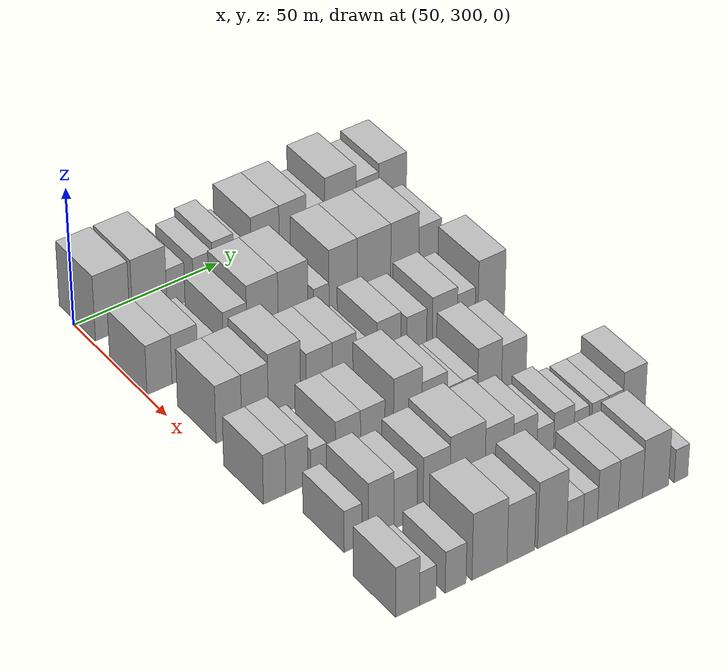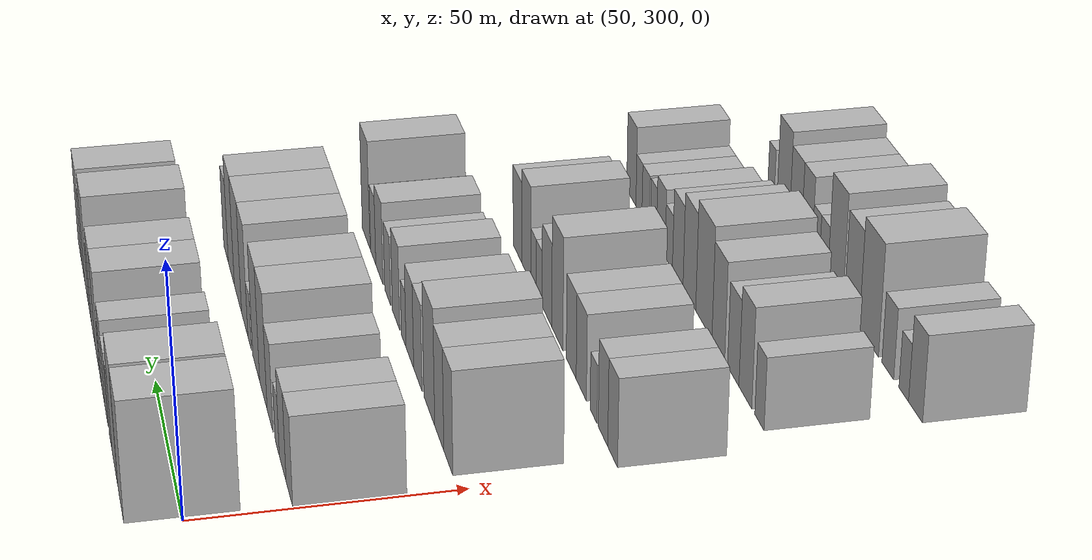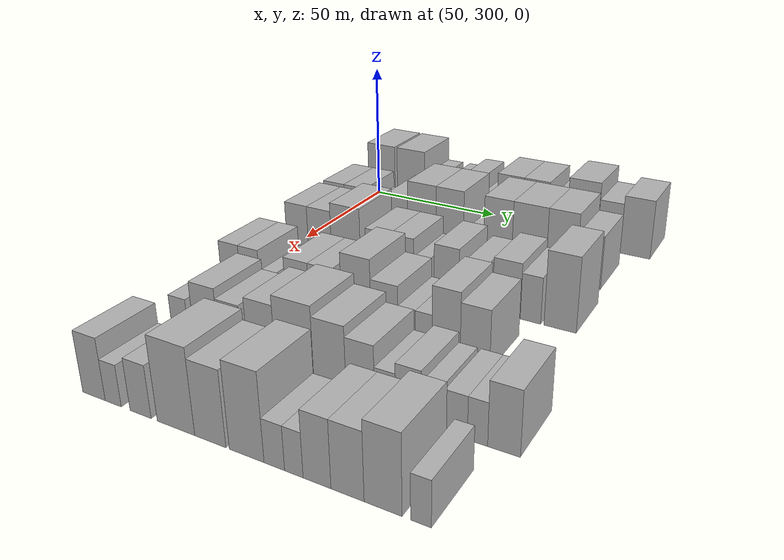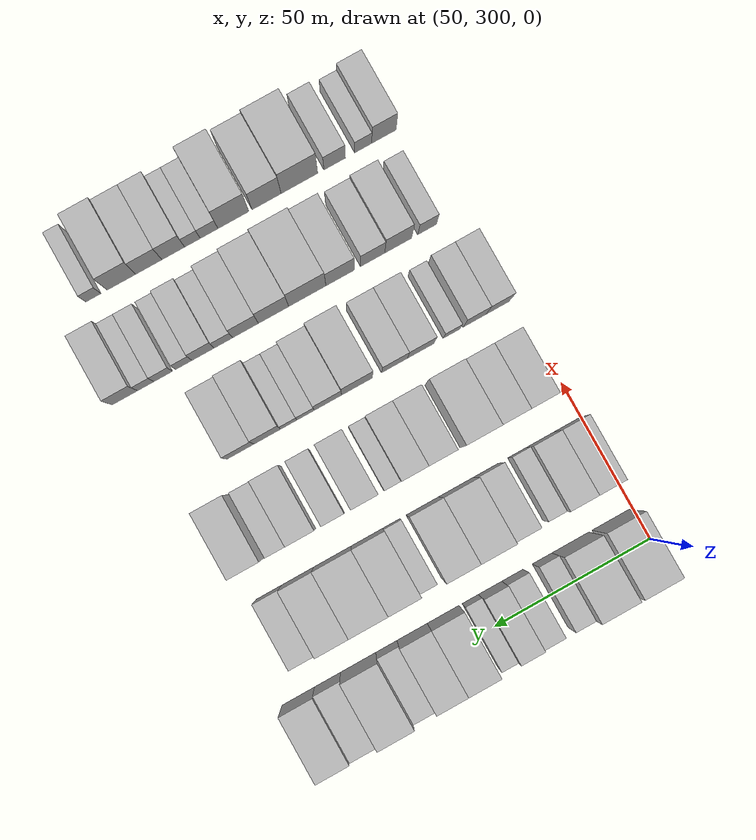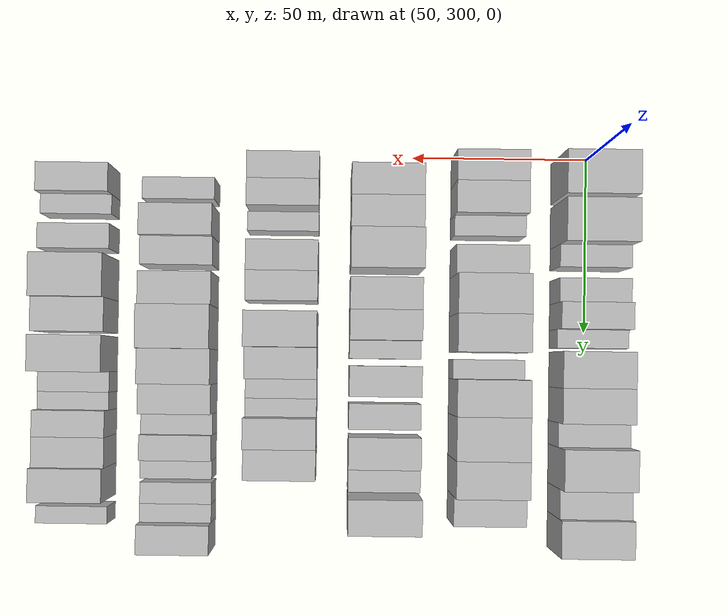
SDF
<sdf version="1.6">
 <world name="default">
  <model name="building_97">
   <static>1</static>
   <pose>50.0000 307.1307 0 0.000000 0.000000 0.000000</pose>
   <link name="link">
    <pose>0 0 12.00 0 0 0</pose>
    <collision name="collision"><geometry><box><size>20.0000 11.8827 24.0000</size></box></geometry></collision>
    <visual name="visual">
     <cast_shadows>0</cast_shadows>
     <geometry><box><size>20.0000 11.8827 24.0000</size></box></geometry>
     <material>
      <script>
       <uri>model://HANNAS_wall/materials/scripts</uri>
       <uri>model://HANNAS_wall/materials/textures</uri>
       <name>vrc/HANNAS_wall</name>
      </script>
     </material>
    </visual>
   </link>
  </model>
  <model name="building_98">
   <static>1</static>
   <pose>50.0000 320.0025 0 0.000000 0.000000 0.000000</pose>
   <link name="link">
    <pose>0 0 12.00 0 0 0</pose>
    <collision name="collision"><geometry><box><size>20.0000 11.8609 24.0000</size></box></geometry></collision>
    <visual name="visual">
     <cast_shadows>0</cast_shadows>
     <geometry><box><size>20.0000 11.8609 24.0000</size></box></geometry>
     <material>
      <script>
       <uri>model://HANNAS_wall/materials/scripts</uri>
       <uri>model://HANNAS_wall/materials/textures</uri>
       <name>vrc/HANNAS_wall</name>
      </script>
     </material>
    </visual>
   </link>
  </model>
  <model name="building_99">
   <static>1</static>
   <pose>50.0000 329.0669 0 0.000000 0.000000 0.000000</pose>
   <link name="link">
    <pose>0 0 7.50 0 0 0</pose>
    <collision name="collision"><geometry><box><size>20.0000 6.2678 15.0000</size></box></geometry></collision>
    <visual name="visual">
     <cast_shadows>0</cast_shadows>
     <geometry><box><size>20.0000 6.2678 15.0000</size></box></geometry>
     <material>
      <script>
       <uri>model://HANNAS_wall/materials/scripts</uri>
       <uri>model://HANNAS_wall/materials/textures</uri>
       <name>vrc/HANNAS_wall</name>
      </script>
     </material>
    </visual>
   </link>
  </model>
  <model name="building_100">
   <static>1</static>
   <pose>50.0000 338.5815 0 0.000000 0.000000 0.000000</pose>
   <link name="link">
    <pose>0 0 7.50 0 0 0</pose>
    <collision name="collision"><geometry><box><size>20.0000 6.7614 15.0000</size></box></geometry></collision>
    <visual name="visual">
     <cast_shadows>0</cast_shadows>
     <geometry><box><size>20.0000 6.7614 15.0000</size></box></geometry>
     <material>
      <script>
       <uri>model://HANNAS_wall/materials/scripts</uri>
       <uri>model://HANNAS_wall/materials/textures</uri>
       <name>vrc/HANNAS_wall</name>
      </script>
     </material>
    </visual>
   </link>
  </model>
  <model name="building_101">
   <static>1</static>
   <pose>50.0000 345.6937 0 0.000000 0.000000 0.000000</pose>
   <link name="link">
    <pose>0 0 9.00 0 0 0</pose>
    <collision name="collision"><geometry><box><size>20.0000 7.4629 18.0000</size></box></geometry></collision>
    <visual name="visual">
     <cast_shadows>0</cast_shadows>
     <geometry><box><size>20.0000 7.4629 18.0000</size></box></geometry>
     <material>
      <script>
       <uri>model://HANNAS_wall/materials/scripts</uri>
       <uri>model://HANNAS_wall/materials/textures</uri>
       <name>vrc/HANNAS_wall</name>
      </script>
     </material>
    </visual>
   </link>
  </model>
  <model name="building_102">
   <static>1</static>
   <pose>50.0000 352.0262 0 0.000000 0.000000 0.000000</pose>
   <link name="link">
    <pose>0 0 6.00 0 0 0</pose>
    <collision name="collision"><geometry><box><size>20.0000 5.2023 12.0000</size></box></geometry></collision>
    <visual name="visual">
     <cast_shadows>0</cast_shadows>
     <geometry><box><size>20.0000 5.2023 12.0000</size></box></geometry>
     <material>
      <script>
       <uri>model://HANNAS_wall/materials/scripts</uri>
       <uri>model://HANNAS_wall/materials/textures</uri>
       <name>vrc/HANNAS_wall</name>
      </script>
     </material>
    </visual>
   </link>
  </model>
  <model name="building_103">
   <static>1</static>
   <pose>50.0000 360.6580 0 0.000000 0.000000 0.000000</pose>
   <link name="link">
    <pose>0 0 10.50 0 0 0</pose>
    <collision name="collision"><geometry><box><size>20.0000 10.0612 21.0000</size></box></geometry></collision>
    <visual name="visual">
     <cast_shadows>0</cast_shadows>
     <geometry><box><size>20.0000 10.0612 21.0000</size></box></geometry>
     <material>
      <script>
       <uri>model://HANNAS_wall/materials/scripts</uri>
       <uri>model://HANNAS_wall/materials/textures</uri>
       <name>vrc/HANNAS_wall</name>
      </script>
     </material>
    </visual>
   </link>
  </model>
  <model name="building_104">
   <static>1</static>
   <pose>50.0000 370.5353 0 0.000000 0.000000 0.000000</pose>
   <link name="link">
    <pose>0 0 10.50 0 0 0</pose>
    <collision name="collision"><geometry><box><size>20.0000 9.6933 21.0000</size></box></geometry></collision>
    <visual name="visual">
     <cast_shadows>0</cast_shadows>
     <geometry><box><size>20.0000 9.6933 21.0000</size></box></geometry>
     <material>
      <script>
       <uri>model://HANNAS_wall/materials/scripts</uri>
       <uri>model://HANNAS_wall/materials/textures</uri>
       <name>vrc/HANNAS_wall</name>
      </script>
     </material>
    </visual>
   </link>
  </model>
  <model name="building_105">
   <static>1</static>
   <pose>50.0000 378.7601 0 0.000000 0.000000 0.000000</pose>
   <link name="link">
    <pose>0 0 7.50 0 0 0</pose>
    <collision name="collision"><geometry><box><size>20.0000 6.7562 15.0000</size></box></geometry></collision>
    <visual name="visual">
     <cast_shadows>0</cast_shadows>
     <geometry><box><size>20.0000 6.7562 15.0000</size></box></geometry>
     <material>
      <script>
       <uri>model://HANNAS_wall/materials/scripts</uri>
       <uri>model://HANNAS_wall/materials/textures</uri>
       <name>vrc/HANNAS_wall</name>
      </script>
     </material>
    </visual>
   </link>
  </model>
  <model name="building_106">
   <static>1</static>
   <pose>50.0000 387.7573 0 0.000000 0.000000 0.000000</pose>
   <link name="link">
    <pose>0 0 12.00 0 0 0</pose>
    <collision name="collision"><geometry><box><size>20.0000 11.2383 24.0000</size></box></geometry></collision>
    <visual name="visual">
     <cast_shadows>0</cast_shadows>
     <geometry><box><size>20.0000 11.2383 24.0000</size></box></geometry>
     <material>
      <script>
       <uri>model://HANNAS_wall/materials/scripts</uri>
       <uri>model://HANNAS_wall/materials/textures</uri>
       <name>vrc/HANNAS_wall</name>
      </script>
     </material>
    </visual>
   </link>
  </model>
  <model name="building_107">
   <static>1</static>
   <pose>50.0000 397.5015 0 0.000000 0.000000 0.000000</pose>
   <link name="link">
    <pose>0 0 9.00 0 0 0</pose>
    <collision name="collision"><geometry><box><size>20.0000 8.2500 18.0000</size></box></geometry></collision>
    <visual name="visual">
     <cast_shadows>0</cast_shadows>
     <geometry><box><size>20.0000 8.2500 18.0000</size></box></geometry>
     <material>
      <script>
       <uri>model://HANNAS_wall/materials/scripts</uri>
       <uri>model://HANNAS_wall/materials/textures</uri>
       <name>vrc/HANNAS_wall</name>
      </script>
     </material>
    </visual>
   </link>
  </model>
  <model name="building_108">
   <static>1</static>
   <pose>50.0000 406.7674 0 0.000000 0.000000 0.000000</pose>
   <link name="link">
    <pose>0 0 10.50 0 0 0</pose>
    <collision name="collision"><geometry><box><size>20.0000 10.2819 21.0000</size></box></geometry></collision>
    <visual name="visual">
     <cast_shadows>0</cast_shadows>
     <geometry><box><size>20.0000 10.2819 21.0000</size></box></geometry>
     <material>
      <script>
       <uri>model://HANNAS_wall/materials/scripts</uri>
       <uri>model://HANNAS_wall/materials/textures</uri>
       <name>vrc/HANNAS_wall</name>
      </script>
     </material>
    </visual>
   </link>
  </model>
  <model name="building_213">
   <static>1</static>
   <pose>79.0000 304.6840 0 0.000000 0.000000 0.000000</pose>
   <link name="link">
    <pose>0 0 9.00 0 0 0</pose>
    <collision name="collision"><geometry><box><size>20.0000 8.5474 18.0000</size></box></geometry></collision>
    <visual name="visual">
     <cast_shadows>0</cast_shadows>
     <geometry><box><size>20.0000 8.5474 18.0000</size></box></geometry>
     <material>
      <script>
       <uri>model://HANNAS_wall/materials/scripts</uri>
       <uri>model://HANNAS_wall/materials/textures</uri>
       <name>vrc/HANNAS_wall</name>
      </script>
     </material>
    </visual>
   </link>
  </model>
  <model name="building_214">
   <static>1</static>
   <pose>79.0000 313.4037 0 0.000000 0.000000 0.000000</pose>
   <link name="link">
    <pose>0 0 9.00 0 0 0</pose>
    <collision name="collision"><geometry><box><size>20.0000 8.8919 18.0000</size></box></geometry></collision>
    <visual name="visual">
     <cast_shadows>0</cast_shadows>
     <geometry><box><size>20.0000 8.8919 18.0000</size></box></geometry>
     <material>
      <script>
       <uri>model://HANNAS_wall/materials/scripts</uri>
       <uri>model://HANNAS_wall/materials/textures</uri>
       <name>vrc/HANNAS_wall</name>
      </script>
     </material>
    </visual>
   </link>
  </model>
  <model name="building_215">
   <static>1</static>
   <pose>79.0000 320.7392 0 0.000000 0.000000 0.000000</pose>
   <link name="link">
    <pose>0 0 6.00 0 0 0</pose>
    <collision name="collision"><geometry><box><size>20.0000 5.7792 12.0000</size></box></geometry></collision>
    <visual name="visual">
     <cast_shadows>0</cast_shadows>
     <geometry><box><size>20.0000 5.7792 12.0000</size></box></geometry>
     <material>
      <script>
       <uri>model://HANNAS_wall/materials/scripts</uri>
       <uri>model://HANNAS_wall/materials/textures</uri>
       <name>vrc/HANNAS_wall</name>
      </script>
     </material>
    </visual>
   </link>
  </model>
  <model name="building_216">
   <static>1</static>
   <pose>79.0000 330.7473 0 0.000000 0.000000 0.000000</pose>
   <link name="link">
    <pose>0 0 9.00 0 0 0</pose>
    <collision name="collision"><geometry><box><size>20.0000 8.2369 18.0000</size></box></geometry></collision>
    <visual name="visual">
     <cast_shadows>0</cast_shadows>
     <geometry><box><size>20.0000 8.2369 18.0000</size></box></geometry>
     <material>
      <script>
       <uri>model://HANNAS_wall/materials/scripts</uri>
       <uri>model://HANNAS_wall/materials/textures</uri>
       <name>vrc/HANNAS_wall</name>
      </script>
     </material>
    </visual>
   </link>
  </model>
  <model name="building_217">
   <static>1</static>
   <pose>79.0000 340.3240 0 0.000000 0.000000 0.000000</pose>
   <link name="link">
    <pose>0 0 12.00 0 0 0</pose>
    <collision name="collision"><geometry><box><size>20.0000 10.9166 24.0000</size></box></geometry></collision>
    <visual name="visual">
     <cast_shadows>0</cast_shadows>
     <geometry><box><size>20.0000 10.9166 24.0000</size></box></geometry>
     <material>
      <script>
       <uri>model://HANNAS_wall/materials/scripts</uri>
       <uri>model://HANNAS_wall/materials/textures</uri>
       <name>vrc/HANNAS_wall</name>
      </script>
     </material>
    </visual>
   </link>
  </model>
  <model name="building_218">
   <static>1</static>
   <pose>79.0000 350.9794 0 0.000000 0.000000 0.000000</pose>
   <link name="link">
    <pose>0 0 12.00 0 0 0</pose>
    <collision name="collision"><geometry><box><size>20.0000 10.3941 24.0000</size></box></geometry></collision>
    <visual name="visual">
     <cast_shadows>0</cast_shadows>
     <geometry><box><size>20.0000 10.3941 24.0000</size></box></geometry>
     <material>
      <script>
       <uri>model://HANNAS_wall/materials/scripts</uri>
       <uri>model://HANNAS_wall/materials/textures</uri>
       <name>vrc/HANNAS_wall</name>
      </script>
     </material>
    </visual>
   </link>
  </model>
  <model name="building_219">
   <static>1</static>
   <pose>79.0000 360.9035 0 0.000000 0.000000 0.000000</pose>
   <link name="link">
    <pose>0 0 6.00 0 0 0</pose>
    <collision name="collision"><geometry><box><size>20.0000 5.4542 12.0000</size></box></geometry></collision>
    <visual name="visual">
     <cast_shadows>0</cast_shadows>
     <geometry><box><size>20.0000 5.4542 12.0000</size></box></geometry>
     <material>
      <script>
       <uri>model://HANNAS_wall/materials/scripts</uri>
       <uri>model://HANNAS_wall/materials/textures</uri>
       <name>vrc/HANNAS_wall</name>
      </script>
     </material>
    </visual>
   </link>
  </model>
  <model name="building_220">
   <static>1</static>
   <pose>79.0000 368.6727 0 0.000000 0.000000 0.000000</pose>
   <link name="link">
    <pose>0 0 12.00 0 0 0</pose>
    <collision name="collision"><geometry><box><size>20.0000 10.0841 24.0000</size></box></geometry></collision>
    <visual name="visual">
     <cast_shadows>0</cast_shadows>
     <geometry><box><size>20.0000 10.0841 24.0000</size></box></geometry>
     <material>
      <script>
       <uri>model://HANNAS_wall/materials/scripts</uri>
       <uri>model://HANNAS_wall/materials/textures</uri>
       <name>vrc/HANNAS_wall</name>
      </script>
     </material>
    </visual>
   </link>
  </model>
  <model name="building_221">
   <static>1</static>
   <pose>79.0000 379.6829 0 0.000000 0.000000 0.000000</pose>
   <link name="link">
    <pose>0 0 12.00 0 0 0</pose>
    <collision name="collision"><geometry><box><size>20.0000 11.9362 24.0000</size></box></geometry></collision>
    <visual name="visual">
     <cast_shadows>0</cast_shadows>
     <geometry><box><size>20.0000 11.9362 24.0000</size></box></geometry>
     <material>
      <script>
       <uri>model://HANNAS_wall/materials/scripts</uri>
       <uri>model://HANNAS_wall/materials/textures</uri>
       <name>vrc/HANNAS_wall</name>
      </script>
     </material>
    </visual>
   </link>
  </model>
  <model name="building_222">
   <static>1</static>
   <pose>79.0000 390.7441 0 0.000000 0.000000 0.000000</pose>
   <link name="link">
    <pose>0 0 12.00 0 0 0</pose>
    <collision name="collision"><geometry><box><size>20.0000 10.1862 24.0000</size></box></geometry></collision>
    <visual name="visual">
     <cast_shadows>0</cast_shadows>
     <geometry><box><size>20.0000 10.1862 24.0000</size></box></geometry>
     <material>
      <script>
       <uri>model://HANNAS_wall/materials/scripts</uri>
       <uri>model://HANNAS_wall/materials/textures</uri>
       <name>vrc/HANNAS_wall</name>
      </script>
     </material>
    </visual>
   </link>
  </model>
  <model name="building_223">
   <static>1</static>
   <pose>79.0000 399.8841 0 0.000000 0.000000 0.000000</pose>
   <link name="link">
    <pose>0 0 9.00 0 0 0</pose>
    <collision name="collision"><geometry><box><size>20.0000 8.0937 18.0000</size></box></geometry></collision>
    <visual name="visual">
     <cast_shadows>0</cast_shadows>
     <geometry><box><size>20.0000 8.0937 18.0000</size></box></geometry>
     <material>
      <script>
       <uri>model://HANNAS_wall/materials/scripts</uri>
       <uri>model://HANNAS_wall/materials/textures</uri>
       <name>vrc/HANNAS_wall</name>
      </script>
     </material>
    </visual>
   </link>
  </model>
  <model name="building_330">
   <static>1</static>
   <pose>108.0000 309.3415 0 0.000000 0.000000 0.000000</pose>
   <link name="link">
    <pose>0 0 10.50 0 0 0</pose>
    <collision name="collision"><geometry><box><size>20.0000 8.6946 21.0000</size></box></geometry></collision>
    <visual name="visual">
     <cast_shadows>0</cast_shadows>
     <geometry><box><size>20.0000 8.6946 21.0000</size></box></geometry>
     <material>
      <script>
       <uri>model://HANNAS_wall/materials/scripts</uri>
       <uri>model://HANNAS_wall/materials/textures</uri>
       <name>vrc/HANNAS_wall</name>
      </script>
     </material>
    </visual>
   </link>
  </model>
  <model name="building_331">
   <static>1</static>
   <pose>108.0000 318.2270 0 0.000000 0.000000 0.000000</pose>
   <link name="link">
    <pose>0 0 10.50 0 0 0</pose>
    <collision name="collision"><geometry><box><size>20.0000 9.0765 21.0000</size></box></geometry></collision>
    <visual name="visual">
     <cast_shadows>0</cast_shadows>
     <geometry><box><size>20.0000 9.0765 21.0000</size></box></geometry>
     <material>
      <script>
       <uri>model://HANNAS_wall/materials/scripts</uri>
       <uri>model://HANNAS_wall/materials/textures</uri>
       <name>vrc/HANNAS_wall</name>
      </script>
     </material>
    </visual>
   </link>
  </model>
  <model name="building_332">
   <static>1</static>
   <pose>108.0000 328.2932 0 0.000000 0.000000 0.000000</pose>
   <link name="link">
    <pose>0 0 12.00 0 0 0</pose>
    <collision name="collision"><geometry><box><size>20.0000 11.0559 24.0000</size></box></geometry></collision>
    <visual name="visual">
     <cast_shadows>0</cast_shadows>
     <geometry><box><size>20.0000 11.0559 24.0000</size></box></geometry>
     <material>
      <script>
       <uri>model://HANNAS_wall/materials/scripts</uri>
       <uri>model://HANNAS_wall/materials/textures</uri>
       <name>vrc/HANNAS_wall</name>
      </script>
     </material>
    </visual>
   </link>
  </model>
  <model name="building_333">
   <static>1</static>
   <pose>108.0000 340.2824 0 0.000000 0.000000 0.000000</pose>
   <link name="link">
    <pose>0 0 9.00 0 0 0</pose>
    <collision name="collision"><geometry><box><size>20.0000 8.9225 18.0000</size></box></geometry></collision>
    <visual name="visual">
     <cast_shadows>0</cast_shadows>
     <geometry><box><size>20.0000 8.9225 18.0000</size></box></geometry>
     <material>
      <script>
       <uri>model://HANNAS_wall/materials/scripts</uri>
       <uri>model://HANNAS_wall/materials/textures</uri>
       <name>vrc/HANNAS_wall</name>
      </script>
     </material>
    </visual>
   </link>
  </model>
  <model name="building_334">
   <static>1</static>
   <pose>108.0000 348.9611 0 0.000000 0.000000 0.000000</pose>
   <link name="link">
    <pose>0 0 9.00 0 0 0</pose>
    <collision name="collision"><geometry><box><size>20.0000 8.4349 18.0000</size></box></geometry></collision>
    <visual name="visual">
     <cast_shadows>0</cast_shadows>
     <geometry><box><size>20.0000 8.4349 18.0000</size></box></geometry>
     <material>
      <script>
       <uri>model://HANNAS_wall/materials/scripts</uri>
       <uri>model://HANNAS_wall/materials/textures</uri>
       <name>vrc/HANNAS_wall</name>
      </script>
     </material>
    </visual>
   </link>
  </model>
  <model name="building_335">
   <static>1</static>
   <pose>108.0000 355.7434 0 0.000000 0.000000 0.000000</pose>
   <link name="link">
    <pose>0 0 6.00 0 0 0</pose>
    <collision name="collision"><geometry><box><size>20.0000 5.1298 12.0000</size></box></geometry></collision>
    <visual name="visual">
     <cast_shadows>0</cast_shadows>
     <geometry><box><size>20.0000 5.1298 12.0000</size></box></geometry>
     <material>
      <script>
       <uri>model://HANNAS_wall/materials/scripts</uri>
       <uri>model://HANNAS_wall/materials/textures</uri>
       <name>vrc/HANNAS_wall</name>
      </script>
     </material>
    </visual>
   </link>
  </model>
  <model name="building_336">
   <static>1</static>
   <pose>108.0000 364.5466 0 0.000000 0.000000 0.000000</pose>
   <link name="link">
    <pose>0 0 9.00 0 0 0</pose>
    <collision name="collision"><geometry><box><size>20.0000 8.4767 18.0000</size></box></geometry></collision>
    <visual name="visual">
     <cast_shadows>0</cast_shadows>
     <geometry><box><size>20.0000 8.4767 18.0000</size></box></geometry>
     <material>
      <script>
       <uri>model://HANNAS_wall/materials/scripts</uri>
       <uri>model://HANNAS_wall/materials/textures</uri>
       <name>vrc/HANNAS_wall</name>
      </script>
     </material>
    </visual>
   </link>
  </model>
  <model name="building_337">
   <static>1</static>
   <pose>108.0000 374.3567 0 0.000000 0.000000 0.000000</pose>
   <link name="link">
    <pose>0 0 7.50 0 0 0</pose>
    <collision name="collision"><geometry><box><size>20.0000 7.1434 15.0000</size></box></geometry></collision>
    <visual name="visual">
     <cast_shadows>0</cast_shadows>
     <geometry><box><size>20.0000 7.1434 15.0000</size></box></geometry>
     <material>
      <script>
       <uri>model://HANNAS_wall/materials/scripts</uri>
       <uri>model://HANNAS_wall/materials/textures</uri>
       <name>vrc/HANNAS_wall</name>
      </script>
     </material>
    </visual>
   </link>
  </model>
  <model name="building_338">
   <static>1</static>
   <pose>108.0000 384.3855 0 0.000000 0.000000 0.000000</pose>
   <link name="link">
    <pose>0 0 9.00 0 0 0</pose>
    <collision name="collision"><geometry><box><size>20.0000 8.9141 18.0000</size></box></geometry></collision>
    <visual name="visual">
     <cast_shadows>0</cast_shadows>
     <geometry><box><size>20.0000 8.9141 18.0000</size></box></geometry>
     <material>
      <script>
       <uri>model://HANNAS_wall/materials/scripts</uri>
       <uri>model://HANNAS_wall/materials/textures</uri>
       <name>vrc/HANNAS_wall</name>
      </script>
     </material>
    </visual>
   </link>
  </model>
  <model name="building_339">
   <static>1</static>
   <pose>108.0000 392.0382 0 0.000000 0.000000 0.000000</pose>
   <link name="link">
    <pose>0 0 7.50 0 0 0</pose>
    <collision name="collision"><geometry><box><size>20.0000 6.3914 15.0000</size></box></geometry></collision>
    <visual name="visual">
     <cast_shadows>0</cast_shadows>
     <geometry><box><size>20.0000 6.3914 15.0000</size></box></geometry>
     <material>
      <script>
       <uri>model://HANNAS_wall/materials/scripts</uri>
       <uri>model://HANNAS_wall/materials/textures</uri>
       <name>vrc/HANNAS_wall</name>
      </script>
     </material>
    </visual>
   </link>
  </model>
  <model name="building_340">
   <static>1</static>
   <pose>108.0000 401.1110 0 0.000000 0.000000 0.000000</pose>
   <link name="link">
    <pose>0 0 12.00 0 0 0</pose>
    <collision name="collision"><geometry><box><size>20.0000 9.7541 24.0000</size></box></geometry></collision>
    <visual name="visual">
     <cast_shadows>0</cast_shadows>
     <geometry><box><size>20.0000 9.7541 24.0000</size></box></geometry>
     <material>
      <script>
       <uri>model://HANNAS_wall/materials/scripts</uri>
       <uri>model://HANNAS_wall/materials/textures</uri>
       <name>vrc/HANNAS_wall</name>
      </script>
     </material>
    </visual>
   </link>
  </model>
  <model name="building_441">
   <static>1</static>
   <pose>137.0000 305.3489 0 0.000000 0.000000 0.000000</pose>
   <link name="link">
    <pose>0 0 9.00 0 0 0</pose>
    <collision name="collision"><geometry><box><size>20.0000 7.4667 18.0000</size></box></geometry></collision>
    <visual name="visual">
     <cast_shadows>0</cast_shadows>
     <geometry><box><size>20.0000 7.4667 18.0000</size></box></geometry>
     <material>
      <script>
       <uri>model://HANNAS_wall/materials/scripts</uri>
       <uri>model://HANNAS_wall/materials/textures</uri>
       <name>vrc/HANNAS_wall</name>
      </script>
     </material>
    </visual>
   </link>
  </model>
  <model name="building_442">
   <static>1</static>
   <pose>137.0000 312.8095 0 0.000000 0.000000 0.000000</pose>
   <link name="link">
    <pose>0 0 9.00 0 0 0</pose>
    <collision name="collision"><geometry><box><size>20.0000 7.4544 18.0000</size></box></geometry></collision>
    <visual name="visual">
     <cast_shadows>0</cast_shadows>
     <geometry><box><size>20.0000 7.4544 18.0000</size></box></geometry>
     <material>
      <script>
       <uri>model://HANNAS_wall/materials/scripts</uri>
       <uri>model://HANNAS_wall/materials/textures</uri>
       <name>vrc/HANNAS_wall</name>
      </script>
     </material>
    </visual>
   </link>
  </model>
  <model name="building_443">
   <static>1</static>
   <pose>137.0000 320.2196 0 0.000000 0.000000 0.000000</pose>
   <link name="link">
    <pose>0 0 6.00 0 0 0</pose>
    <collision name="collision"><geometry><box><size>20.0000 5.3659 12.0000</size></box></geometry></collision>
    <visual name="visual">
     <cast_shadows>0</cast_shadows>
     <geometry><box><size>20.0000 5.3659 12.0000</size></box></geometry>
     <material>
      <script>
       <uri>model://HANNAS_wall/materials/scripts</uri>
       <uri>model://HANNAS_wall/materials/textures</uri>
       <name>vrc/HANNAS_wall</name>
      </script>
     </material>
    </visual>
   </link>
  </model>
  <model name="building_444">
   <static>1</static>
   <pose>137.0000 330.1406 0 0.000000 0.000000 0.000000</pose>
   <link name="link">
    <pose>0 0 9.00 0 0 0</pose>
    <collision name="collision"><geometry><box><size>20.0000 8.4761 18.0000</size></box></geometry></collision>
    <visual name="visual">
     <cast_shadows>0</cast_shadows>
     <geometry><box><size>20.0000 8.4761 18.0000</size></box></geometry>
     <material>
      <script>
       <uri>model://HANNAS_wall/materials/scripts</uri>
       <uri>model://HANNAS_wall/materials/textures</uri>
       <name>vrc/HANNAS_wall</name>
      </script>
     </material>
    </visual>
   </link>
  </model>
  <model name="building_445">
   <static>1</static>
   <pose>137.0000 338.5464 0 0.000000 0.000000 0.000000</pose>
   <link name="link">
    <pose>0 0 9.00 0 0 0</pose>
    <collision name="collision"><geometry><box><size>20.0000 8.3356 18.0000</size></box></geometry></collision>
    <visual name="visual">
     <cast_shadows>0</cast_shadows>
     <geometry><box><size>20.0000 8.3356 18.0000</size></box></geometry>
     <material>
      <script>
       <uri>model://HANNAS_wall/materials/scripts</uri>
       <uri>model://HANNAS_wall/materials/textures</uri>
       <name>vrc/HANNAS_wall</name>
      </script>
     </material>
    </visual>
   </link>
  </model>
  <model name="building_446">
   <static>1</static>
   <pose>137.0000 350.6017 0 0.000000 0.000000 0.000000</pose>
   <link name="link">
    <pose>0 0 12.00 0 0 0</pose>
    <collision name="collision"><geometry><box><size>20.0000 9.7750 24.0000</size></box></geometry></collision>
    <visual name="visual">
     <cast_shadows>0</cast_shadows>
     <geometry><box><size>20.0000 9.7750 24.0000</size></box></geometry>
     <material>
      <script>
       <uri>model://HANNAS_wall/materials/scripts</uri>
       <uri>model://HANNAS_wall/materials/textures</uri>
       <name>vrc/HANNAS_wall</name>
      </script>
     </material>
    </visual>
   </link>
  </model>
  <model name="building_447">
   <static>1</static>
   <pose>137.0000 359.8634 0 0.000000 0.000000 0.000000</pose>
   <link name="link">
    <pose>0 0 9.00 0 0 0</pose>
    <collision name="collision"><geometry><box><size>20.0000 8.7484 18.0000</size></box></geometry></collision>
    <visual name="visual">
     <cast_shadows>0</cast_shadows>
     <geometry><box><size>20.0000 8.7484 18.0000</size></box></geometry>
     <material>
      <script>
       <uri>model://HANNAS_wall/materials/scripts</uri>
       <uri>model://HANNAS_wall/materials/textures</uri>
       <name>vrc/HANNAS_wall</name>
      </script>
     </material>
    </visual>
   </link>
  </model>
  <model name="building_448">
   <static>1</static>
   <pose>137.0000 366.9826 0 0.000000 0.000000 0.000000</pose>
   <link name="link">
    <pose>0 0 6.00 0 0 0</pose>
    <collision name="collision"><geometry><box><size>20.0000 5.4900 12.0000</size></box></geometry></collision>
    <visual name="visual">
     <cast_shadows>0</cast_shadows>
     <geometry><box><size>20.0000 5.4900 12.0000</size></box></geometry>
     <material>
      <script>
       <uri>model://HANNAS_wall/materials/scripts</uri>
       <uri>model://HANNAS_wall/materials/textures</uri>
       <name>vrc/HANNAS_wall</name>
      </script>
     </material>
    </visual>
   </link>
  </model>
  <model name="building_449">
   <static>1</static>
   <pose>137.0000 372.3193 0 0.000000 0.000000 0.000000</pose>
   <link name="link">
    <pose>0 0 6.00 0 0 0</pose>
    <collision name="collision"><geometry><box><size>20.0000 5.1833 12.0000</size></box></geometry></collision>
    <visual name="visual">
     <cast_shadows>0</cast_shadows>
     <geometry><box><size>20.0000 5.1833 12.0000</size></box></geometry>
     <material>
      <script>
       <uri>model://HANNAS_wall/materials/scripts</uri>
       <uri>model://HANNAS_wall/materials/textures</uri>
       <name>vrc/HANNAS_wall</name>
      </script>
     </material>
    </visual>
   </link>
  </model>
  <model name="building_450">
   <static>1</static>
   <pose>137.0000 379.1668 0 0.000000 0.000000 0.000000</pose>
   <link name="link">
    <pose>0 0 10.50 0 0 0</pose>
    <collision name="collision"><geometry><box><size>20.0000 8.5116 21.0000</size></box></geometry></collision>
    <visual name="visual">
     <cast_shadows>0</cast_shadows>
     <geometry><box><size>20.0000 8.5116 21.0000</size></box></geometry>
     <material>
      <script>
       <uri>model://HANNAS_wall/materials/scripts</uri>
       <uri>model://HANNAS_wall/materials/textures</uri>
       <name>vrc/HANNAS_wall</name>
      </script>
     </material>
    </visual>
   </link>
  </model>
  <model name="building_451">
   <static>1</static>
   <pose>137.0000 387.7775 0 0.000000 0.000000 0.000000</pose>
   <link name="link">
    <pose>0 0 9.00 0 0 0</pose>
    <collision name="collision"><geometry><box><size>20.0000 8.7098 18.0000</size></box></geometry></collision>
    <visual name="visual">
     <cast_shadows>0</cast_shadows>
     <geometry><box><size>20.0000 8.7098 18.0000</size></box></geometry>
     <material>
      <script>
       <uri>model://HANNAS_wall/materials/scripts</uri>
       <uri>model://HANNAS_wall/materials/textures</uri>
       <name>vrc/HANNAS_wall</name>
      </script>
     </material>
    </visual>
   </link>
  </model>
  <model name="building_558">
   <static>1</static>
   <pose>166.0000 311.7224 0 0.000000 0.000000 0.000000</pose>
   <link name="link">
    <pose>0 0 7.50 0 0 0</pose>
    <collision name="collision"><geometry><box><size>20.0000 6.0136 15.0000</size></box></geometry></collision>
    <visual name="visual">
     <cast_shadows>0</cast_shadows>
     <geometry><box><size>20.0000 6.0136 15.0000</size></box></geometry>
     <material>
      <script>
       <uri>model://HANNAS_wall/materials/scripts</uri>
       <uri>model://HANNAS_wall/materials/textures</uri>
       <name>vrc/HANNAS_wall</name>
      </script>
     </material>
    </visual>
   </link>
  </model>
  <model name="building_559">
   <static>1</static>
   <pose>166.0000 321.0521 0 0.000000 0.000000 0.000000</pose>
   <link name="link">
    <pose>0 0 10.50 0 0 0</pose>
    <collision name="collision"><geometry><box><size>20.0000 8.6459 21.0000</size></box></geometry></collision>
    <visual name="visual">
     <cast_shadows>0</cast_shadows>
     <geometry><box><size>20.0000 8.6459 21.0000</size></box></geometry>
     <material>
      <script>
       <uri>model://HANNAS_wall/materials/scripts</uri>
       <uri>model://HANNAS_wall/materials/textures</uri>
       <name>vrc/HANNAS_wall</name>
      </script>
     </material>
    </visual>
   </link>
  </model>
  <model name="building_560">
   <static>1</static>
   <pose>166.0000 329.2892 0 0.000000 0.000000 0.000000</pose>
   <link name="link">
    <pose>0 0 9.00 0 0 0</pose>
    <collision name="collision"><geometry><box><size>20.0000 7.8283 18.0000</size></box></geometry></collision>
    <visual name="visual">
     <cast_shadows>0</cast_shadows>
     <geometry><box><size>20.0000 7.8283 18.0000</size></box></geometry>
     <material>
      <script>
       <uri>model://HANNAS_wall/materials/scripts</uri>
       <uri>model://HANNAS_wall/materials/textures</uri>
       <name>vrc/HANNAS_wall</name>
      </script>
     </material>
    </visual>
   </link>
  </model>
  <model name="building_561">
   <static>1</static>
   <pose>166.0000 339.7576 0 0.000000 0.000000 0.000000</pose>
   <link name="link">
    <pose>0 0 10.50 0 0 0</pose>
    <collision name="collision"><geometry><box><size>20.0000 9.1084 21.0000</size></box></geometry></collision>
    <visual name="visual">
     <cast_shadows>0</cast_shadows>
     <geometry><box><size>20.0000 9.1084 21.0000</size></box></geometry>
     <material>
      <script>
       <uri>model://HANNAS_wall/materials/scripts</uri>
       <uri>model://HANNAS_wall/materials/textures</uri>
       <name>vrc/HANNAS_wall</name>
      </script>
     </material>
    </visual>
   </link>
  </model>
  <model name="building_562">
   <static>1</static>
   <pose>166.0000 350.2936 0 0.000000 0.000000 0.000000</pose>
   <link name="link">
    <pose>0 0 12.00 0 0 0</pose>
    <collision name="collision"><geometry><box><size>20.0000 11.9635 24.0000</size></box></geometry></collision>
    <visual name="visual">
     <cast_shadows>0</cast_shadows>
     <geometry><box><size>20.0000 11.9635 24.0000</size></box></geometry>
     <material>
      <script>
       <uri>model://HANNAS_wall/materials/scripts</uri>
       <uri>model://HANNAS_wall/materials/textures</uri>
       <name>vrc/HANNAS_wall</name>
      </script>
     </material>
    </visual>
   </link>
  </model>
  <model name="building_563">
   <static>1</static>
   <pose>166.0000 361.1309 0 0.000000 0.000000 0.000000</pose>
   <link name="link">
    <pose>0 0 10.50 0 0 0</pose>
    <collision name="collision"><geometry><box><size>20.0000 9.7111 21.0000</size></box></geometry></collision>
    <visual name="visual">
     <cast_shadows>0</cast_shadows>
     <geometry><box><size>20.0000 9.7111 21.0000</size></box></geometry>
     <material>
      <script>
       <uri>model://HANNAS_wall/materials/scripts</uri>
       <uri>model://HANNAS_wall/materials/textures</uri>
       <name>vrc/HANNAS_wall</name>
      </script>
     </material>
    </visual>
   </link>
  </model>
  <model name="building_564">
   <static>1</static>
   <pose>166.0000 370.1301 0 0.000000 0.000000 0.000000</pose>
   <link name="link">
    <pose>0 0 9.00 0 0 0</pose>
    <collision name="collision"><geometry><box><size>20.0000 8.2873 18.0000</size></box></geometry></collision>
    <visual name="visual">
     <cast_shadows>0</cast_shadows>
     <geometry><box><size>20.0000 8.2873 18.0000</size></box></geometry>
     <material>
      <script>
       <uri>model://HANNAS_wall/materials/scripts</uri>
       <uri>model://HANNAS_wall/materials/textures</uri>
       <name>vrc/HANNAS_wall</name>
      </script>
     </material>
    </visual>
   </link>
  </model>
  <model name="building_565">
   <static>1</static>
   <pose>166.0000 377.2313 0 0.000000 0.000000 0.000000</pose>
   <link name="link">
    <pose>0 0 6.00 0 0 0</pose>
    <collision name="collision"><geometry><box><size>20.0000 5.9151 12.0000</size></box></geometry></collision>
    <visual name="visual">
     <cast_shadows>0</cast_shadows>
     <geometry><box><size>20.0000 5.9151 12.0000</size></box></geometry>
     <material>
      <script>
       <uri>model://HANNAS_wall/materials/scripts</uri>
       <uri>model://HANNAS_wall/materials/textures</uri>
       <name>vrc/HANNAS_wall</name>
      </script>
     </material>
    </visual>
   </link>
  </model>
  <model name="building_566">
   <static>1</static>
   <pose>166.0000 383.7357 0 0.000000 0.000000 0.000000</pose>
   <link name="link">
    <pose>0 0 7.50 0 0 0</pose>
    <collision name="collision"><geometry><box><size>20.0000 7.0936 15.0000</size></box></geometry></collision>
    <visual name="visual">
     <cast_shadows>0</cast_shadows>
     <geometry><box><size>20.0000 7.0936 15.0000</size></box></geometry>
     <material>
      <script>
       <uri>model://HANNAS_wall/materials/scripts</uri>
       <uri>model://HANNAS_wall/materials/textures</uri>
       <name>vrc/HANNAS_wall</name>
      </script>
     </material>
    </visual>
   </link>
  </model>
  <model name="building_567">
   <static>1</static>
   <pose>166.0000 389.8967 0 0.000000 0.000000 0.000000</pose>
   <link name="link">
    <pose>0 0 6.00 0 0 0</pose>
    <collision name="collision"><geometry><box><size>20.0000 5.2284 12.0000</size></box></geometry></collision>
    <visual name="visual">
     <cast_shadows>0</cast_shadows>
     <geometry><box><size>20.0000 5.2284 12.0000</size></box></geometry>
     <material>
      <script>
       <uri>model://HANNAS_wall/materials/scripts</uri>
       <uri>model://HANNAS_wall/materials/textures</uri>
       <name>vrc/HANNAS_wall</name>
      </script>
     </material>
    </visual>
   </link>
  </model>
  <model name="building_568">
   <static>1</static>
   <pose>166.0000 396.4929 0 0.000000 0.000000 0.000000</pose>
   <link name="link">
    <pose>0 0 6.00 0 0 0</pose>
    <collision name="collision"><geometry><box><size>20.0000 5.9642 12.0000</size></box></geometry></collision>
    <visual name="visual">
     <cast_shadows>0</cast_shadows>
     <geometry><box><size>20.0000 5.9642 12.0000</size></box></geometry>
     <material>
      <script>
       <uri>model://HANNAS_wall/materials/scripts</uri>
       <uri>model://HANNAS_wall/materials/textures</uri>
       <name>vrc/HANNAS_wall</name>
      </script>
     </material>
    </visual>
   </link>
  </model>
  <model name="building_569">
   <static>1</static>
   <pose>166.0000 402.0626 0 0.000000 0.000000 0.000000</pose>
   <link name="link">
    <pose>0 0 6.00 0 0 0</pose>
    <collision name="collision"><geometry><box><size>20.0000 5.1750 12.0000</size></box></geometry></collision>
    <visual name="visual">
     <cast_shadows>0</cast_shadows>
     <geometry><box><size>20.0000 5.1750 12.0000</size></box></geometry>
     <material>
      <script>
       <uri>model://HANNAS_wall/materials/scripts</uri>
       <uri>model://HANNAS_wall/materials/textures</uri>
       <name>vrc/HANNAS_wall</name>
      </script>
     </material>
    </visual>
   </link>
  </model>
  <model name="building_570">
   <static>1</static>
   <pose>166.0000 408.7164 0 0.000000 0.000000 0.000000</pose>
   <link name="link">
    <pose>0 0 9.00 0 0 0</pose>
    <collision name="collision"><geometry><box><size>20.0000 8.1328 18.0000</size></box></geometry></collision>
    <visual name="visual">
     <cast_shadows>0</cast_shadows>
     <geometry><box><size>20.0000 8.1328 18.0000</size></box></geometry>
     <material>
      <script>
       <uri>model://HANNAS_wall/materials/scripts</uri>
       <uri>model://HANNAS_wall/materials/textures</uri>
       <name>vrc/HANNAS_wall</name>
      </script>
     </material>
    </visual>
   </link>
  </model>
  <model name="building_674">
   <static>1</static>
   <pose>195.0000 309.3801 0 0.000000 0.000000 0.000000</pose>
   <link name="link">
    <pose>0 0 9.00 0 0 0</pose>
    <collision name="collision"><geometry><box><size>20.0000 7.8867 18.0000</size></box></geometry></collision>
    <visual name="visual">
     <cast_shadows>0</cast_shadows>
     <geometry><box><size>20.0000 7.8867 18.0000</size></box></geometry>
     <material>
      <script>
       <uri>model://HANNAS_wall/materials/scripts</uri>
       <uri>model://HANNAS_wall/materials/textures</uri>
       <name>vrc/HANNAS_wall</name>
      </script>
     </material>
    </visual>
   </link>
  </model>
  <model name="building_675">
   <static>1</static>
   <pose>195.0000 316.0718 0 0.000000 0.000000 0.000000</pose>
   <link name="link">
    <pose>0 0 6.00 0 0 0</pose>
    <collision name="collision"><geometry><box><size>20.0000 5.4968 12.0000</size></box></geometry></collision>
    <visual name="visual">
     <cast_shadows>0</cast_shadows>
     <geometry><box><size>20.0000 5.4968 12.0000</size></box></geometry>
     <material>
      <script>
       <uri>model://HANNAS_wall/materials/scripts</uri>
       <uri>model://HANNAS_wall/materials/textures</uri>
       <name>vrc/HANNAS_wall</name>
      </script>
     </material>
    </visual>
   </link>
  </model>
  <model name="building_676">
   <static>1</static>
   <pose>195.0000 325.3002 0 0.000000 0.000000 0.000000</pose>
   <link name="link">
    <pose>0 0 7.50 0 0 0</pose>
    <collision name="collision"><geometry><box><size>20.0000 6.9601 15.0000</size></box></geometry></collision>
    <visual name="visual">
     <cast_shadows>0</cast_shadows>
     <geometry><box><size>20.0000 6.9601 15.0000</size></box></geometry>
     <material>
      <script>
       <uri>model://HANNAS_wall/materials/scripts</uri>
       <uri>model://HANNAS_wall/materials/textures</uri>
       <name>vrc/HANNAS_wall</name>
      </script>
     </material>
    </visual>
   </link>
  </model>
  <model name="building_677">
   <static>1</static>
   <pose>195.0000 336.6810 0 0.000000 0.000000 0.000000</pose>
   <link name="link">
    <pose>0 0 12.00 0 0 0</pose>
    <collision name="collision"><geometry><box><size>20.0000 11.8015 24.0000</size></box></geometry></collision>
    <visual name="visual">
     <cast_shadows>0</cast_shadows>
     <geometry><box><size>20.0000 11.8015 24.0000</size></box></geometry>
     <material>
      <script>
       <uri>model://HANNAS_wall/materials/scripts</uri>
       <uri>model://HANNAS_wall/materials/textures</uri>
       <name>vrc/HANNAS_wall</name>
      </script>
     </material>
    </visual>
   </link>
  </model>
  <model name="building_678">
   <static>1</static>
   <pose>195.0000 347.2667 0 0.000000 0.000000 0.000000</pose>
   <link name="link">
    <pose>0 0 10.50 0 0 0</pose>
    <collision name="collision"><geometry><box><size>20.0000 9.3699 21.0000</size></box></geometry></collision>
    <visual name="visual">
     <cast_shadows>0</cast_shadows>
     <geometry><box><size>20.0000 9.3699 21.0000</size></box></geometry>
     <material>
      <script>
       <uri>model://HANNAS_wall/materials/scripts</uri>
       <uri>model://HANNAS_wall/materials/textures</uri>
       <name>vrc/HANNAS_wall</name>
      </script>
     </material>
    </visual>
   </link>
  </model>
  <model name="building_679">
   <static>1</static>
   <pose>195.0000 357.9356 0 0.000000 0.000000 0.000000</pose>
   <link name="link">
    <pose>0 0 12.00 0 0 0</pose>
    <collision name="collision"><geometry><box><size>20.0000 9.9679 24.0000</size></box></geometry></collision>
    <visual name="visual">
     <cast_shadows>0</cast_shadows>
     <geometry><box><size>20.0000 9.9679 24.0000</size></box></geometry>
     <material>
      <script>
       <uri>model://HANNAS_wall/materials/scripts</uri>
       <uri>model://HANNAS_wall/materials/textures</uri>
       <name>vrc/HANNAS_wall</name>
      </script>
     </material>
    </visual>
   </link>
  </model>
  <model name="building_680">
   <static>1</static>
   <pose>195.0000 365.7681 0 0.000000 0.000000 0.000000</pose>
   <link name="link">
    <pose>0 0 6.00 0 0 0</pose>
    <collision name="collision"><geometry><box><size>20.0000 5.6971 12.0000</size></box></geometry></collision>
    <visual name="visual">
     <cast_shadows>0</cast_shadows>
     <geometry><box><size>20.0000 5.6971 12.0000</size></box></geometry>
     <material>
      <script>
       <uri>model://HANNAS_wall/materials/scripts</uri>
       <uri>model://HANNAS_wall/materials/textures</uri>
       <name>vrc/HANNAS_wall</name>
      </script>
     </material>
    </visual>
   </link>
  </model>
  <model name="building_681">
   <static>1</static>
   <pose>195.0000 371.1130 0 0.000000 0.000000 0.000000</pose>
   <link name="link">
    <pose>0 0 6.00 0 0 0</pose>
    <collision name="collision"><geometry><box><size>20.0000 4.9927 12.0000</size></box></geometry></collision>
    <visual name="visual">
     <cast_shadows>0</cast_shadows>
     <geometry><box><size>20.0000 4.9927 12.0000</size></box></geometry>
     <material>
      <script>
       <uri>model://HANNAS_wall/materials/scripts</uri>
       <uri>model://HANNAS_wall/materials/textures</uri>
       <name>vrc/HANNAS_wall</name>
      </script>
     </material>
    </visual>
   </link>
  </model>
  <model name="building_682">
   <static>1</static>
   <pose>195.0000 377.2663 0 0.000000 0.000000 0.000000</pose>
   <link name="link">
    <pose>0 0 9.00 0 0 0</pose>
    <collision name="collision"><geometry><box><size>20.0000 7.3139 18.0000</size></box></geometry></collision>
    <visual name="visual">
     <cast_shadows>0</cast_shadows>
     <geometry><box><size>20.0000 7.3139 18.0000</size></box></geometry>
     <material>
      <script>
       <uri>model://HANNAS_wall/materials/scripts</uri>
       <uri>model://HANNAS_wall/materials/textures</uri>
       <name>vrc/HANNAS_wall</name>
      </script>
     </material>
    </visual>
   </link>
  </model>
  <model name="building_683">
   <static>1</static>
   <pose>195.0000 385.1133 0 0.000000 0.000000 0.000000</pose>
   <link name="link">
    <pose>0 0 9.00 0 0 0</pose>
    <collision name="collision"><geometry><box><size>20.0000 8.3800 18.0000</size></box></geometry></collision>
    <visual name="visual">
     <cast_shadows>0</cast_shadows>
     <geometry><box><size>20.0000 8.3800 18.0000</size></box></geometry>
     <material>
      <script>
       <uri>model://HANNAS_wall/materials/scripts</uri>
       <uri>model://HANNAS_wall/materials/textures</uri>
       <name>vrc/HANNAS_wall</name>
      </script>
     </material>
    </visual>
   </link>
  </model>
  <model name="building_684">
   <static>1</static>
   <pose>195.0000 393.8974 0 0.000000 0.000000 0.000000</pose>
   <link name="link">
    <pose>0 0 10.50 0 0 0</pose>
    <collision name="collision"><geometry><box><size>20.0000 9.1882 21.0000</size></box></geometry></collision>
    <visual name="visual">
     <cast_shadows>0</cast_shadows>
     <geometry><box><size>20.0000 9.1882 21.0000</size></box></geometry>
     <material>
      <script>
       <uri>model://HANNAS_wall/materials/scripts</uri>
       <uri>model://HANNAS_wall/materials/textures</uri>
       <name>vrc/HANNAS_wall</name>
      </script>
     </material>
    </visual>
   </link>
  </model>
  <model name="building_685">
   <static>1</static>
   <pose>195.0000 402.9040 0 0.000000 0.000000 0.000000</pose>
   <link name="link">
    <pose>0 0 6.00 0 0 0</pose>
    <collision name="collision"><geometry><box><size>20.0000 4.8249 12.0000</size></box></geometry></collision>
    <visual name="visual">
     <cast_shadows>0</cast_shadows>
     <geometry><box><size>20.0000 4.8249 12.0000</size></box></geometry>
     <material>
      <script>
       <uri>model://HANNAS_wall/materials/scripts</uri>
       <uri>model://HANNAS_wall/materials/textures</uri>
       <name>vrc/HANNAS_wall</name>
      </script>
     </material>
    </visual>
   </link>
  </model>
 </world>
</sdf>
